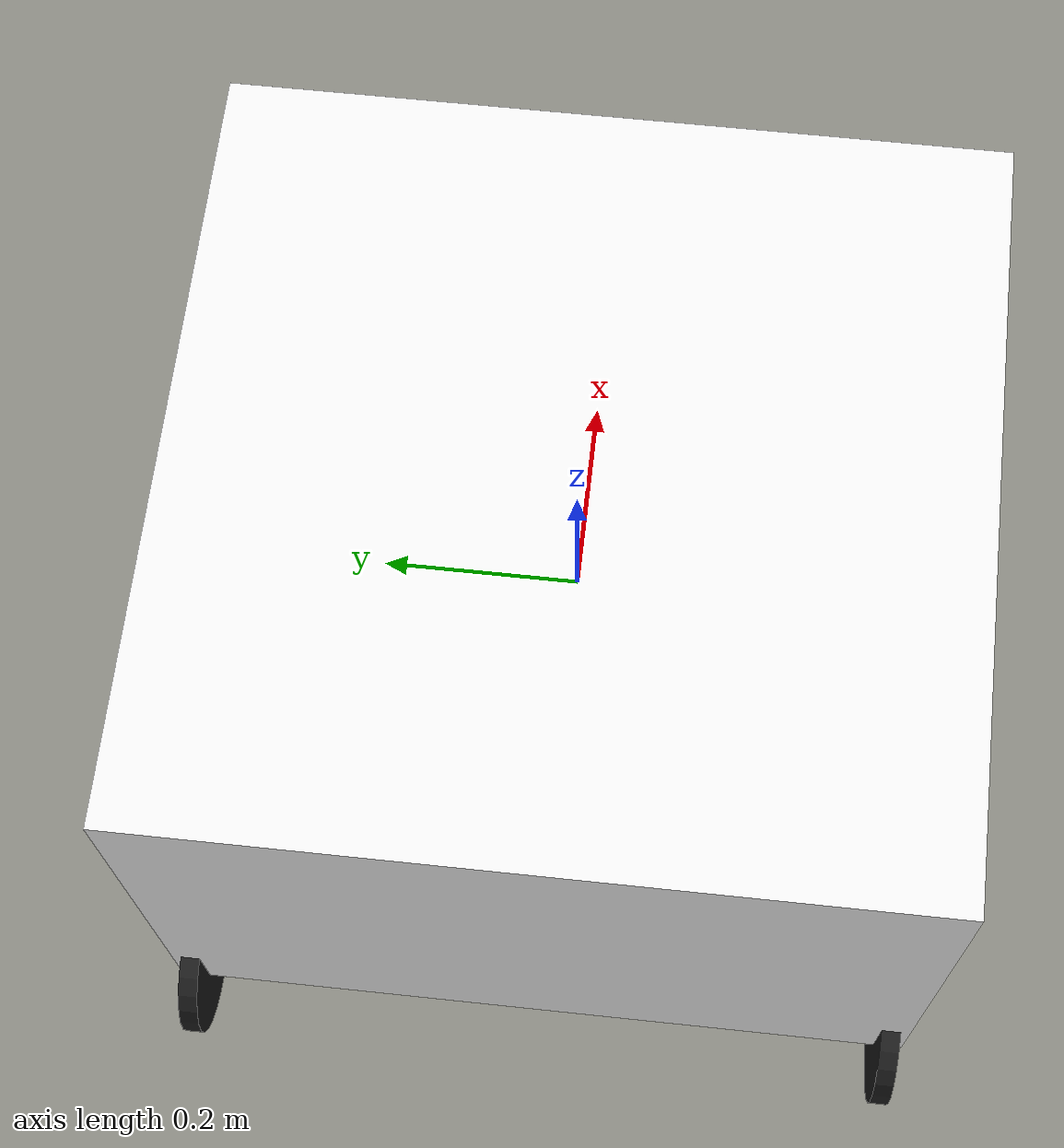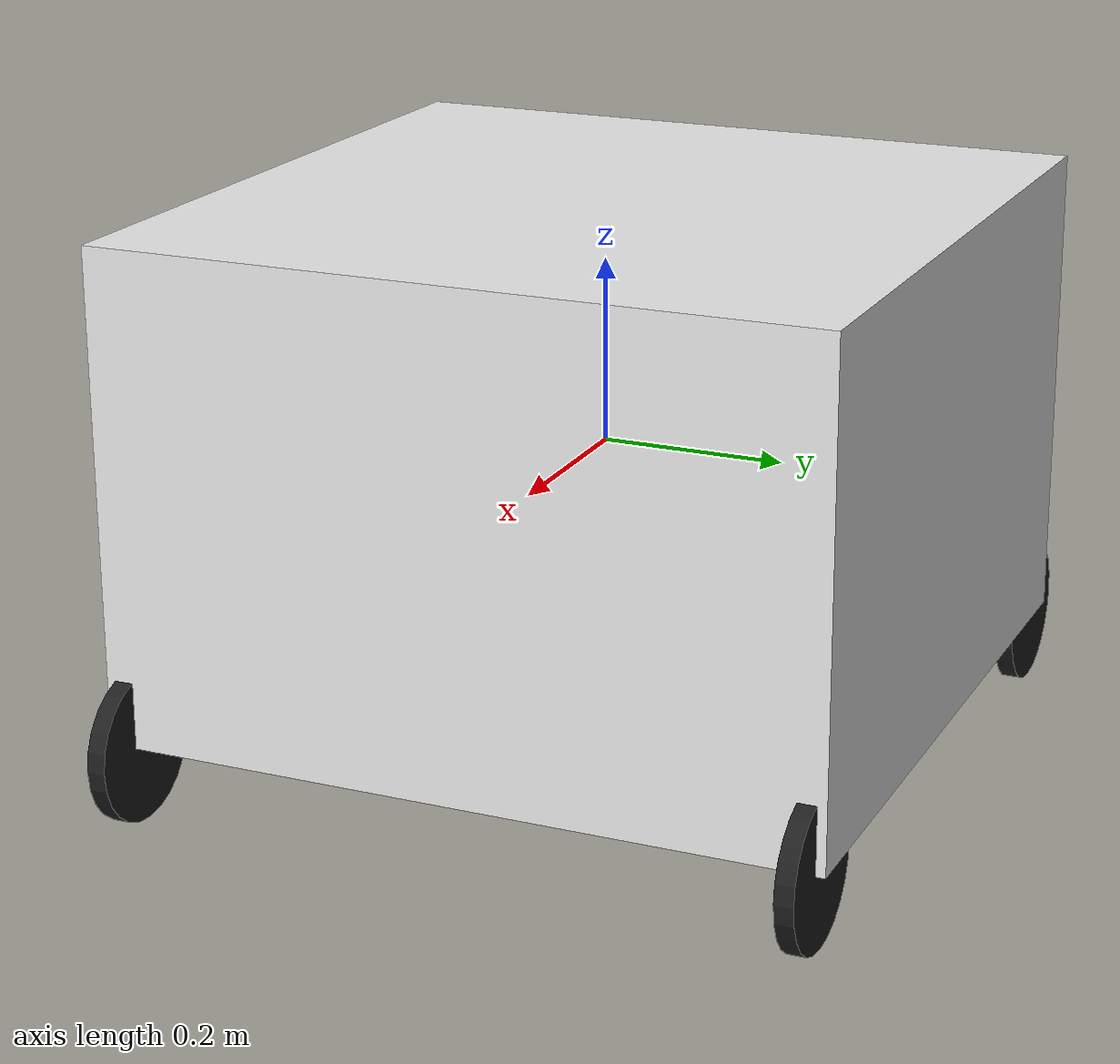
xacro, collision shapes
<?xml version="1.0"?>
<robot xmlns:xacro="http://www.ros.org/wiki/xacro" name="protobot">
    <!-- Includes files to build the robot -->
    <xacro:include filename="Base.xacro" />
    <xacro:include filename="Wheel.xacro" />
    <xacro:include filename="material.xacro" />

    <!-- Wheel Origin Values -->
    <xacro:property name="LeftWheelXOrigin" value="-.37"/>
    <xacro:property name="RightWheelXOrigin" value=".37"/>

    <xacro:property name="BackWheelYOrigin" value="-.37"/>
    <xacro:property name="FrontWheelYOrigin" value=".37"/>

    <xacro:property name="wheelMass" value="0.7"/>

    <xacro:property name="baseMass" value="20"/>

    <!-- Base of the robot -->
    <xacro:base name="base" mass="${baseMass}"/>

    <!-- Left Side of the wheels -->
    <xacro:wheel name="wheel_Right_Front"  mass="${wheelMass}" parentLink="base_link" WheelXOrigin="${FrontWheelYOrigin}" WheelYOrigin="${LeftWheelXOrigin}"/>
    <xacro:wheel name="wheel_Right_Back" mass="${wheelMass}" parentLink="base_link" WheelXOrigin="${BackWheelYOrigin}" WheelYOrigin="${LeftWheelXOrigin}"/>

    <!-- Right Side of the wheels -->
    <xacro:wheel name="wheel_Left_Front" mass="${wheelMass}" parentLink="base_link" WheelXOrigin="${FrontWheelYOrigin}" WheelYOrigin="${RightWheelXOrigin}"/>
    <xacro:wheel name="wheel_Left_Back" mass="${wheelMass}" parentLink="base_link" WheelXOrigin="${BackWheelYOrigin}" WheelYOrigin="${RightWheelXOrigin}"/>

    <!-- Camera -->
    <!-- IMU GPS -->
    <xacro:include filename="$(find gnc_gazebo)/sensors/_zedf9r.xacro"/>
    <xacro:Sparkfun_zedf9r name="gps" parentLink="base_link">
       <origin rpy="0 0 0" xyz="0 0 0.15"/>
    </xacro:Sparkfun_zedf9r>

    <gazebo>
        <plugin filename="libgazebo_ros_control.so" name="gazebo_ros_control">
        <robotNamespace>gnc_robot</robotNamespace>
        </plugin>
    </gazebo>
    <gazebo>
        <plugin name="gazebo_ros_joint_state_publisher"
            filename="libgazebo_ros_joint_state_publisher.so">
            <update_rate>20</update_rate>
            <joint_name>wheel_Left_Front_joint</joint_name>
            <joint_name>wheel_Left_Back_joint</joint_name>
            <joint_name>wheel_Right_Front_joint</joint_name>
            <joint_name>wheel_Right_Back_joint</joint_name>
        </plugin>
    </gazebo>
    <gazebo>
        <plugin name="gazebo_ros_joint_pose_trajectory"
            filename="libgazebo_ros_joint_pose_trajectory.so">
            <update_rate>2</update_rate>
        </plugin>
    </gazebo>

    <joint name="teleop_camera_joint" type="fixed">
	<origin xyz="-0.181 0.19 0.695" rpy="0 0 0"/>
    	<parent link="base_link"/>
    	<child link="teleop_camera_link"/>
    </joint>

    <link name="teleop_camera_link"/>

    <gazebo reference="teleop_camera_link">
    <sensor type="camera" name="teleop_cam">
      <update_rate>30.0</update_rate>
      <camera name="teleop_cam">
        <horizontal_fov>1.3962634</horizontal_fov>
        <image>
          <width>800</width>
          <height>800</height>
          <format>R8G8B8</format>
        </image>
        <clip>
          <near>0.02</near>
          <far>300</far>
        </clip>
        <noise>
          <type>gaussian</type>
          <!-- Noise is sampled independently per pixel on each frame.
               That pixel's noise value is added to each of its color
               channels, which at that point lie in the range [0,1]. -->
          <mean>0.0</mean>
          <stddev>0.007</stddev>
        </noise>
      </camera>

      <plugin name="camera_controller" filename="libgazebo_ros_camera.so">
        <alwaysOn>true</alwaysOn>
        <updateRate>0.0</updateRate>
        <cameraName>teleop_cam</cameraName>
        <imageTopicName>image_raw</imageTopicName>
        <cameraInfoTopicName>camera_info</cameraInfoTopicName>
        <frameName>camera_link</frameName>
        <hackBaseline>0.07</hackBaseline>
        <distortionK1>0.0</distortionK1>
        <distortionK2>0.0</distortionK2>
        <distortionK3>0.0</distortionK3>
        <distortionT1>0.0</distortionT1>
        <distortionT2>0.0</distortionT2>
      </plugin>
    </sensor>
    </gazebo>

</robot>

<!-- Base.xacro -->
<robot xmlns:xacro="http://www.ros.org/wiki/xacro" name="base">
    <!-- This is values for the base of the robot -->
    <xacro:property name="baseLength" value="0.779" />
    <xacro:property name="baseWidth" value="0.780" />
    <xacro:property name="baseHeight" value="0.53" />

    <xacro:property name="originBaseX" value="0" />
    <xacro:property name="originBaseY" value="0" />
    <xacro:property name="originBaseZ" value="0" />

    <xacro:property name="baseColor" value="White" />

    <xacro:macro name="base" params="name mass">
        <link name="${name}_link">
            <visual>
                <origin xyz="${originBaseX} ${originBaseY} ${originBaseZ}" rpy="0 0 0"/>
                <geometry>
                    <mesh filename="package://gnc_description/mesh/chassis.stl"/>
                </geometry>
            </visual>
            <collision>
                <origin xyz="${originBaseX} ${originBaseY} ${originBaseZ}" rpy="0 0 0"/>
                <geometry>
                    <box size="${baseLength} ${baseWidth} ${baseHeight}" />
                </geometry>
            </collision>
            <inertial>
                <mass value="${mass}"/>
                <inertia  ixx="${mass*(baseLength*baseLength+baseHeight*baseHeight)/12}" ixy = "0" ixz = "0"
                iyy="${mass*(baseWidth*baseWidth+baseHeight*baseHeight)/12}" iyz = "0"
                izz="${mass*(baseWidth*baseWidth+baseHeight*baseHeight)/12}"/>
            </inertial>
        </link>

        <!-- Commands for the Base in Gazebo-->

        <gazebo reference="${name}_link">
            <material>Gazebo/White</material>
        </gazebo>
    </xacro:macro>
</robot>

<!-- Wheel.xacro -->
<robot xmlns:xacro="http://www.ros.org/wiki/xacro" name="wheel">

    <!-- This is values for the Wheels of the robot -->
    <xacro:property name="wheelLength" value="0.02" />
    <xacro:property name="wheelRadius" value="0.08" />

    <xacro:property name="originWheelX" value="0"/>
    <xacro:property name="originWheelY" value="0"/>
    <xacro:property name="originWheelZ" value="0"/>

    <xacro:property name="wheelColor" value="Black" />

    <xacro:macro name="wheel" params="name parentLink mass WheelXOrigin WheelYOrigin">
        <link name="${name}_link">
            <visual>
                <origin xyz="${originWheelX} ${originWheelY} ${originWheelZ}" rpy="0 0 0"/>
                <geometry>
                    <mesh filename="package://gnc_description/mesh/wheel.dae"/>
                </geometry>
            </visual>
            <collision>
                <origin xyz="${originWheelX} ${originWheelY} ${originWheelZ}" rpy="${pi/2} 0 0"/>
                <geometry>
                    <cylinder length="${wheelLength}" radius="${wheelRadius}"/>
                </geometry>
            </collision>
            <inertial>
                <mass value="${mass}"/>
                <inertia    ixx="${mass*(3*wheelRadius*wheelRadius+wheelLength*wheelLength)/12}" ixy = "0" ixz = "0"
                iyy="${mass*(3*wheelRadius*wheelRadius+wheelLength*wheelLength)/12}" iyz = "0"
                izz="${mass*wheelRadius*wheelRadius/2}"/>
            </inertial>
        </link>

        <joint name="${name}_joint" type="continuous">
            <origin xyz="${WheelXOrigin} ${WheelYOrigin} -0.27" rpy="0 ${pi/2} 0"/>
            <parent link="${parentLink}"/>
            <child link="${name}_link"/>
            <axis xyz="0 1 0" />
        </joint>

        <transmission name="${name}_trans">
            <type>transmission_interface/SimpleTransmission</type>
            <actuator name="motor1">
            <mechanicalReduction>1</mechanicalReduction>
            </actuator>
            <joint name="${name}_joint">
            <hardwareInterface>hardware_interface/VelocityJointInterface</hardwareInterface>
            </joint>
        </transmission>

        <!-- Commands for the Wheel in Gazebo-->

        <gazebo reference="${name}_link">
            <material>Gazebo/Black</material>
        </gazebo>
    </xacro:macro>
</robot>

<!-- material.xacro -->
<robot xmlns:xacro="http://www.ros.org/wiki/xacro">

    <material name="White">
        <color rgba="1 1 1 1"/>
    </material>

    <material name="Black">
        <color rgba="0 0 0 1"/>
    </material>

    <material name="Red">
        <color rgba="1 0 0 1"/>
    </material>

</robot>

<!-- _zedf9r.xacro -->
<robot xmlns:xacro="http://www.ros.org/wiki/xacro" name="zed_Sensor">

    <xacro:property name="baseZedLength" value="0.0508" />
    <xacro:property name="baseZedWidth" value="0.04318" />
    <xacro:property name="baseZedHeight" value="0.0075" />
    <xacro:property name="mass" value="1" />
    <xacro:property name="baseZedColor" value="Red" />

    <xacro:macro name="Sparkfun_zedf9r" params="name parentLink *origin">
        <link name="${name}_link">
            <visual>
                <origin xyz="0 0 0" rpy="0 0 0"/>
                <geometry>
                    <box size="${baseZedLength} ${baseZedWidth} ${baseZedHeight}" />
                </geometry>
                <material name="${baseZedColor}"/>
            </visual>
            <collision>
                <origin xyz="0 0 0" rpy="0 0 0"/>
                <geometry>
                    <box size="${baseZedLength} ${baseZedWidth} ${baseZedHeight}" />
                </geometry>
            </collision>
            <inertial>
                <mass value="${mass}"/>
                <inertia  ixx="${mass*(baseZedLength*baseZedLength+baseZedHeight*baseZedHeight)/12}" ixy = "0" ixz = "0"
                iyy="${mass*(baseZedWidth*baseZedWidth+baseZedHeight*baseZedHeight)/12}" iyz = "0"
                izz="${mass*(baseZedWidth*baseZedWidth+baseZedHeight*baseZedHeight)/12}"/>
            </inertial>
        </link>

        <joint name="${name}_joint" type="fixed">
            <xacro:insert_block name="origin" />
            <parent link="${parentLink}"/>
            <child link="${name}_link"/>
            <axis xyz="0 1 0" />
        </joint>

        <gazebo>
            <plugin name="gps_controller" filename="libhector_gazebo_ros_gps.so">
                <updateRate>10.0</updateRate>
                <bodyName>${name}_link</bodyName>
                <topicName>gps/fix</topicName>
                <frameId>${name}_link</frameId>
                <gaussianNoise>2</gaussianNoise>
                <alwayson>true</alwayson>
	</plugin>
        </gazebo>
    </xacro:macro>

</robot>
